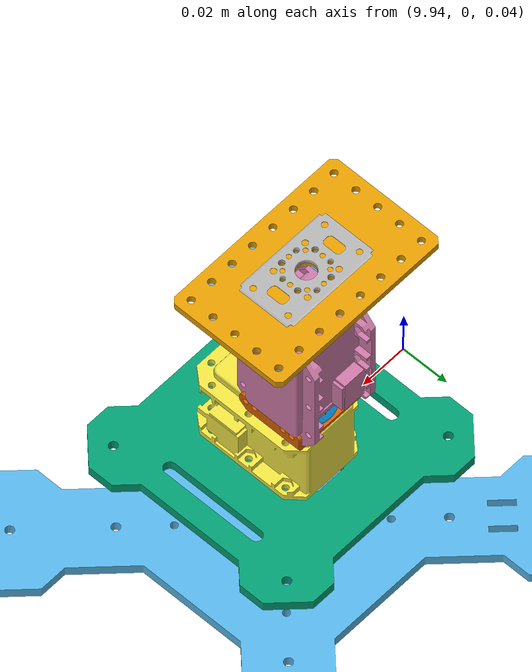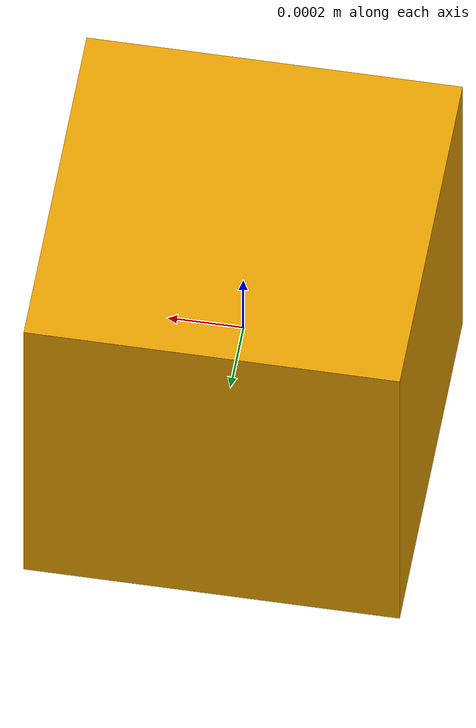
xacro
<?xml version="1.0" ?>
<robot name="widowx_turret" xmlns:xacro="http://ros.org/wiki/xacro">
	<xacro:include filename="$(find widowx_turret_description)/urdf/widowx_turret.urdf.xacro"/>

	<link name="base_footprint">
		<visual>
			<origin xyz="0 0 0" rpy="0 0 0"/>
			<geometry>
				<box size="0.001 0.001 0.001" />
			</geometry>
		</visual>
	</link>
	<xacro:widowx_turret parent="base_footprint" prefix="">
		<origin xyz="10.0 0.0 0.0" rpy="0.0 0.0 0.0"/>
	</xacro:widowx_turret>
</robot>

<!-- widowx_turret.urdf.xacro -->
<robot xmlns:xacro="http://ros.org/wiki/xacro">
   <property name="M_SCALE" value="0.001"/>
   <property name="M_PI" value="3.14159"/>

   <xacro:include filename="$(find widowx_turret_description)/urdf/common_materials.xacro" />

   <!--link name="plate_top_link"/-->

   <xacro:macro name="widowx_turret" params="parent prefix *origin">

      <!-- links -->
      <link name="${prefix}turret_base_link">
         <visual>
            <origin xyz="0 0 0" rpy="0 0 0" />
            <geometry>
               <mesh filename="package://widowx_turret_description/meshes/turret_base.stl"/>
            </geometry>
            <xacro:material_black />
	     </visual>
         <collision>
            <origin xyz="0 0 0" rpy="0 0 0" />
            <geometry>
               <mesh filename="package://widowx_turret_description/meshes/turret_base.stl"/>
            </geometry>
         </collision>
         <inertial>
            <origin xyz="0 0 0" rpy="0 0 0" />
            <mass value="1" />
            <inertia ixx="1.0" ixy="0.0" ixz="0.0" iyy="1.0" iyz="0.0" izz="1.0" />
         </inertial>
      </link>
      <link name="${prefix}servos_base_link">
         <visual>
            <origin xyz="0 0 0" rpy="0 0 0" />
            <geometry>
               <mesh filename="package://widowx_turret_description/meshes/servos_base.stl" />
            </geometry>
            <xacro:material_black />
         </visual>
         <collision>
            <origin xyz="0 0 0" rpy="0 0 0" />
            <geometry>
               <mesh filename="package://widowx_turret_description/meshes/servos_base.stl"/>
            </geometry>
         </collision>
         <inertial>
            <origin xyz="0 0 0" rpy="0 0 0" />
            <mass value="1" />
            <inertia ixx="1.0" ixy="0.0" ixz="0.0" iyy="1.0" iyz="0.0" izz="1.0" />
         </inertial>
      </link>
      <link name="${prefix}servo_pan_link">
         <visual>
			      <origin xyz="0 0 0" rpy="0 0 0" />
            <!--origin xyz="0 0 0" rpy="0 0 0" /-->
            <geometry>
               <mesh filename="package://widowx_turret_description/meshes/MX_28T.stl" />
            </geometry>
            <xacro:material_black />
         </visual>
         <collision>
            <origin xyz="0 0 0" rpy="0 0 0" />
            <geometry>
               <mesh filename="package://widowx_turret_description/meshes/MX_28T.stl" />
            </geometry>
         </collision>
         <inertial>
            <origin xyz="0 0 0" rpy="0 0 0" />
            <mass value="1" />
            <inertia ixx="1.0" ixy="0.0" ixz="0.0" iyy="1.0" iyz="0.0" izz="1.0" />
         </inertial>
      </link>
      <link name="${prefix}servo_horn_link">
         <visual>
			<origin xyz="0 0 0" rpy="${M_PI/2} 0 0" />
			<!--origin xyz="0 0 0" rpy="0 0 0" /-->
            <geometry>
               <mesh filename="package://widowx_turret_description/meshes/servo_horn.stl"/>
            </geometry>
           <xacro:material_black />
         </visual>
         <collision>
            <origin xyz="0 0 0" rpy="${M_PI/2} 0 0" />
            <geometry>
               <mesh filename="package://widowx_turret_description/meshes/servo_horn.stl"/>
            </geometry>
         </collision>
         <inertial>
            <origin xyz="0 0 0" rpy="0 0 0" />
            <mass value="1" />
            <inertia ixx="1.0" ixy="0.0" ixz="0.0" iyy="1.0" iyz="0.0" izz="1.0"/>
         </inertial>
      </link>
      <link name="${prefix}side_link">
         <visual>
            <origin xyz="0 0 0" rpy="${M_PI/2} 0 ${M_PI/2}" />
            <geometry>
               <mesh filename="package://widowx_turret_description/meshes/side.stl"/>
            </geometry>
            <xacro:material_black />
         </visual>
         <collision>
            <origin xyz="0 0 0" rpy="0 0 0" />
            <geometry>
               <mesh filename="package://widowx_turret_description/meshes/side.stl"/>
            </geometry>
         </collision>
         <inertial>
            <origin xyz="0 0 0" rpy="0 0 0" />
            <mass value="1" />
            <inertia ixx="1.0" ixy="0.0" ixz="0.0" iyy="1.0" iyz="0.0" izz="1.0" />
         </inertial>
      </link>
      <link name="${prefix}servo_tilt_link">
         <visual>
            <origin xyz="0 0 ${0.001*41.6}" rpy="${M_PI/2} 0 ${M_PI/2}" />
            <geometry>
               <mesh filename="package://widowx_turret_description/meshes/MX_28T.stl"/>
            </geometry>
            <xacro:material_black />
         </visual>
         <collision>
            <origin xyz="0 0 0" rpy="0 0 0" />
            <geometry>
               <mesh filename="package://widowx_turret_description/meshes/MX_28T.stl"/>
            </geometry>
         </collision>
         <inertial>
            <origin xyz="0 0 0" rpy="0 0 0" />
            <mass value="1" />
            <inertia ixx="1.0" ixy="0.0" ixz="0.0" iyy="1.0" iyz="0.0" izz="1.0" />
         </inertial>
      </link>
      <link name="${prefix}hinge_link">
         <visual>
            <origin xyz="0 0 0" rpy="${M_PI/2} 0 0" />
            <geometry>
               <mesh filename="package://widowx_turret_description/meshes/hinge.stl"/>
            </geometry>
            <xacro:material_black />
         </visual>
         <collision>
            <origin xyz="0 0 0" rpy="0 0 0" />
            <geometry>
               <mesh filename="package://widowx_turret_description/meshes/hinge.stl"/>
            </geometry>
         </collision>
         <inertial>
            <origin xyz="0 0 0" rpy="0 0 0" />
            <mass value="1" />
            <inertia ixx="1.0" ixy="0.0" ixz="0.0" iyy="1.0" iyz="0.0" izz="1.0" />
         </inertial>
      </link>
      <link name="${prefix}top_plate_link">
         <visual>
            <origin xyz="0 0 0" rpy="0 0 1.57" />
            <geometry>
               <mesh filename="package://widowx_turret_description/meshes/top_plate.stl"/>
            </geometry>
            <xacro:material_black />
         </visual>
         <collision>
            <origin xyz="0 0 0" rpy="0 0 0" />
            <geometry>
               <mesh filename="package://widowx_turret_description/meshes/top_plate.stl"/>
            </geometry>
         </collision>
         <inertial>
            <origin xyz="0 0 0" rpy="0 0 0" />
            <mass value="1" />
            <inertia ixx="1.0" ixy="0.0" ixz="0.0" iyy="1.0" iyz="0.0" izz="1.0" />
         </inertial>
      </link>
      <!-- joints -->
      <joint name="${prefix}turret_base_joint" type="fixed">
         <insert_block name="origin" />
         <parent link="${parent}" />
         <child link="${prefix}turret_base_link"/>
         <dynamics damping="0.0" friction="0.0"/>

      </joint>
      <joint name="${prefix}servos_base_joint" type="fixed">
         <origin xyz="0 0 ${0.001*51}" rpy="0 0 0" />
         <parent link="${prefix}turret_base_link" />
         <child link="${prefix}servos_base_link" />
         <axis xyz="0 0 1" />
         <limit lower="-2.617" upper="2.617" effort="0" velocity="0.785" />
         <dynamics damping="0.0" friction="0.0"/>

      </joint>
      <joint name="${prefix}joint_2" type="fixed">
         <!--origin xyz="0.04825 0 0.14203" rpy="0 0 0" /-->
         <origin xyz="0 ${0.001*10.8} ${0.001*15.25}" rpy="0 0 0" />
         <parent link="${prefix}servos_base_link" />
         <child link="${prefix}servo_pan_link" />
         <axis xyz="0 1 0" />
         <limit lower="-1.575" upper="1.575" effort="0" velocity="1.571" />
         <dynamics damping="0.0" friction="0.0"/>

      </joint>

      <joint name="${prefix}servo_horn_joint" type="fixed">
         <origin xyz="0 0 ${0.001*18.25}" rpy="0 0 0" />
         <parent link="${prefix}servo_pan_link" />
         <child link="${prefix}servo_horn_link" />
         <axis xyz="0 1 0" />
         <limit lower="0" upper="2.617" effort="0" velocity="1.571" />
         <dynamics damping="0.0" friction="0.0"/>

      </joint>
      <joint name="${prefix}joint_4" type="fixed">
         <origin xyz="0 0 0" rpy="0 0 0" />
         <parent link="${prefix}servo_horn_link" />
         <child link="${prefix}side_link" />
         <axis xyz="0 1 0" />
         <limit lower="-1.745" upper="1.745" effort="0" velocity="1.571" />
         <dynamics damping="0.0" friction="0.0"/>

      </joint>
      <joint name="${prefix}servo_pan_joint" type="revolute">
         <origin xyz="0 0 0" rpy="0 0 0" />
         <parent link="${prefix}side_link" />
         <child link="${prefix}servo_tilt_link" />
         <axis xyz="0 0 1" />
         <limit lower="-${M_PI}" upper="${M_PI}" effort="5" velocity="1.571" />
         <dynamics damping="0.0" friction="0.0"/>

      </joint>
      <joint name="${prefix}servo_tilt_joint" type="revolute">
         <origin xyz = "0 0 ${0.001*50.25}" rpy="0 0 0" />
         <parent link="${prefix}servo_tilt_link" />
         <child link="${prefix}hinge_link" />
         <axis xyz="1 0 0" />
         <limit lower="-${M_PI/2}" upper="${M_PI/2}" effort="5" velocity="0.5" />
         <dynamics damping="0.0" friction="0.0"/>

      </joint>
      <joint name="${prefix}joint_7" type="fixed">
         <origin xyz = "0 0 ${0.001*29.8}" rpy="0 0 0" />
         <parent link="${prefix}hinge_link" />
         <child link="${prefix}top_plate_link" />
         <axis xyz="0 0 1" />
         <limit lower="-0.31" upper="0.1" effort="0" velocity="0.5" />
         <dynamics damping="0.0" friction="0.0"/>
      </joint>

      <transmission name="tran1">
         <type>transmission_interface/SimpleTransmission</type>
         <joint name="servo_tilt_joint">
            <hardwareInterface>EffortJointInterface</hardwareInterface>
            </joint>
         <actuator name="motor1">
            <hardwareInterface>EffortJointInterface</hardwareInterface>
            <mechanicalReduction>1</mechanicalReduction>
         </actuator>
      </transmission>

      <transmission name="tran2">
         <type>transmission_interface/SimpleTransmission</type>
         <joint name="servo_pan_joint">
            <hardwareInterface>EffortJointInterface</hardwareInterface>
            </joint>
         <actuator name="motor2">
            <hardwareInterface>EffortJointInterface</hardwareInterface>
            <mechanicalReduction>1</mechanicalReduction>
         </actuator>
      </transmission>

   </xacro:macro>

</robot>
